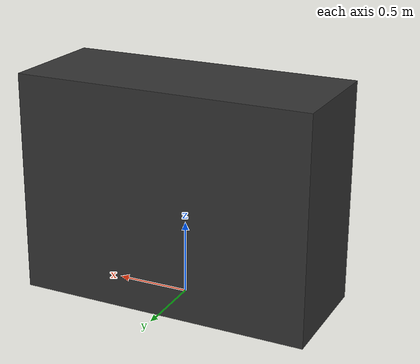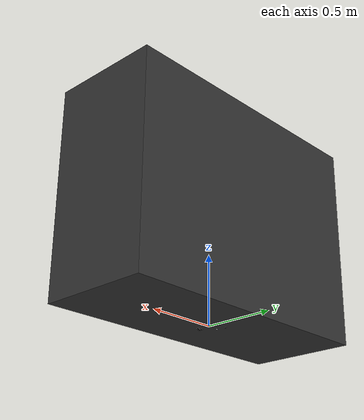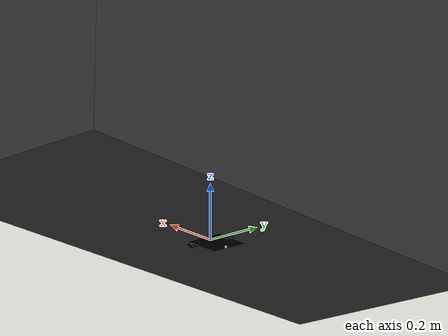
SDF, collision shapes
<?xml version="1.0" ?>
<sdf version="1.5">
  <model name="turtlebot3_burger">

    <include>
        <name>cow_tdf</name>
        <static>0</static>
        <uri>model://cow_tdf</uri>
        <pose>0 0 0 0 0 0</pose>
    </include>

    <pose>0.0 0.0 0.0 0.0 0.0 0.0</pose>

    <link name="base_footprint"/>

    <link name="base_link">

      <inertial>
        <pose>-0.032 0 0.070 0 0 0</pose>
        <inertia>
          <ixx>7.2397393e-01</ixx>
          <ixy>4.686399e-10</ixy>
          <ixz>-1.09525703e-08</ixz>
          <iyy>7.2397393e-01</iyy>
          <iyz>2.8582649e-09</iyz>
          <izz>6.53050163e-01</izz>
        </inertia>
        <mass>8.2573504e-01</mass>
      </inertial>

      <collision name="base_collision">
        <pose>-0.032 0 0.070 0 0 0</pose>
        <geometry>
          <box>
            <size>0.140 0.140 0.140</size>
          </box>
        </geometry>
      </collision>

      <visual name="base_visual">
        <pose>-0.032 0 0 0 0 0</pose>
        <geometry>
          <mesh>
            <uri>model://turtlebot3_common/meshes/burger_base.dae</uri>
            <scale>0.001 0.001 0.001</scale>
          </mesh>
        </geometry>
        <material>
          <!-- Definir o canal alfa (quarto valor) para 0 (transparente) -->
          <ambient>0 0 0 0</ambient>
          <diffuse>0 0 0 0</diffuse>
        </material>
      </visual>
    </link>

    <link name="imu_link">
      <sensor name="tb3_imu" type="imu">
        <always_on>true</always_on>
        <update_rate>200</update_rate>
        <imu>
          <angular_velocity>
            <x>
              <noise type="gaussian">
                <mean>0.0</mean>
                <stddev>2e-4</stddev>
              </noise>
            </x>
            <y>
              <noise type="gaussian">
                <mean>0.0</mean>
                <stddev>2e-4</stddev>
              </noise>
            </y>
            <z>
              <noise type="gaussian">
                <mean>0.0</mean>
                <stddev>2e-4</stddev>
              </noise>
            </z>
          </angular_velocity>
          <linear_acceleration>
            <x>
              <noise type="gaussian">
                <mean>0.0</mean>
                <stddev>1.7e-2</stddev>
              </noise>
            </x>
            <y>
              <noise type="gaussian">
                <mean>0.0</mean>
                <stddev>1.7e-2</stddev>
              </noise>
            </y>
            <z>
              <noise type="gaussian">
                <mean>0.0</mean>
                <stddev>1.7e-2</stddev>
              </noise>
            </z>
          </linear_acceleration>
        </imu>
        <plugin name="turtlebot3_imu" filename="libgazebo_ros_imu_sensor.so">
          <ros>
            <remapping>~/out:=imu</remapping>
          </ros>
        </plugin>
      </sensor>
    </link>
    <link name="wheel_left_link">

      <inertial>
        <pose>0 0.08 0.023 -1.57 0 0</pose>
        <inertia>
          <ixx>1.8158194e-03</ixx>
          <ixy>-9.3392e-12</ixy>
          <ixz>1.04909e-11</ixz>
          <iyy>3.2922126e-03</iyy>
          <iyz>5.75694e-11</iyz>
          <izz>1.8158194e-03</izz>
        </inertia>
        <mass>2.8498940e-02</mass>
      </inertial>

      <collision name="wheel_left_collision">
        <pose>0 0.08 0.023 -1.57 0 0</pose>
        <geometry>
          <cylinder>
            <radius>0.033</radius>
            <length>0.018</length>
          </cylinder>
        </geometry>
        <surface>
          <!-- This friction pamareter don't contain reliable data!! -->
          <friction>
            <ode>
              <mu>100000.0</mu>
              <mu2>100000.0</mu2>
              <fdir1>0 0 0</fdir1>
              <slip1>0.0</slip1>
              <slip2>0.0</slip2>
            </ode>
          </friction>
          <contact>
            <ode>
              <soft_cfm>0</soft_cfm>
              <soft_erp>0.2</soft_erp>
              <kp>1e+5</kp>
              <kd>1</kd>
              <max_vel>0.01</max_vel>
              <min_depth>0.001</min_depth>
            </ode>
          </contact>
        </surface>
      </collision>

      <visual name="wheel_left_visual">
        <pose>0 0.08 0.023 0 0 0</pose>
        <geometry>
          <mesh>
            <uri>model://turtlebot3_common/meshes/tire.dae</uri>
            <scale>0.001 0.001 0.001</scale>
          </mesh>
        </geometry>
        <material>
          <!-- Definir o canal alfa (quarto valor) para 0 (transparente) -->
          <ambient>0 0 0 0</ambient>
          <diffuse>0 0 0 0</diffuse>
        </material>
      </visual>
    </link>

    <link name="wheel_right_link">

      <inertial>
        <pose>0.0 -0.08 0.023 -1.57 0 0</pose>
        <inertia>
          <ixx>1.8158194e-03</ixx>
          <ixy>-9.3392e-12</ixy>
          <ixz>1.04909e-11</ixz>
          <iyy>3.2922126e-03</iyy>
          <iyz>5.75694e-11</iyz>
          <izz>1.8158194e-03</izz>
        </inertia>
        <mass>2.8498940e-02</mass>
      </inertial>

      <collision name="wheel_right_collision">
        <pose>0.0 -0.08 0.023 -1.57 0 0</pose>
        <geometry>
          <cylinder>
            <radius>0.033</radius>
            <length>0.018</length>
          </cylinder>
        </geometry>
        <surface>
          <!-- This friction pamareter don't contain reliable data!! -->
          <friction>
            <ode>
              <mu>100000.0</mu>
              <mu2>100000.0</mu2>
              <fdir1>0 0 0</fdir1>
              <slip1>0.0</slip1>
              <slip2>0.0</slip2>
            </ode>
          </friction>
          <contact>
            <ode>
              <soft_cfm>0</soft_cfm>
              <soft_erp>0.2</soft_erp>
              <kp>1e+5</kp>
              <kd>1</kd>
              <max_vel>0.01</max_vel>
              <min_depth>0.001</min_depth>
            </ode>
          </contact>
        </surface>
      </collision>

      <visual name="wheel_right_visual">
        <pose>0.0 -0.08 0.023 0 0 0</pose>
        <geometry>
          <mesh>
            <uri>model://turtlebot3_common/meshes/tire.dae</uri>
            <scale>0.001 0.001 0.001</scale>
          </mesh>
        </geometry>
        <material>
          <!-- Definir o canal alfa (quarto valor) para 0 (transparente) -->
          <ambient>0 0 0 0</ambient>
          <diffuse>0 0 0 0</diffuse>
        </material>
      </visual>
    </link>

    <link name='caster_back_link'>
      <pose>-0.081 0 -0.004 -1.57 0 0</pose>
      <inertial>
        <mass>0.005</mass>
        <inertia>
          <ixx>0.001</ixx>
          <ixy>0.000</ixy>
          <ixz>0.000</ixz>
          <iyy>0.001</iyy>
          <iyz>0.000</iyz>
          <izz>0.001</izz>
        </inertia>
      </inertial>
      <collision name='collision'>
        <geometry>
          <sphere>
            <radius>0.005000</radius>
          </sphere>
        </geometry>
        <surface>
          <contact>
            <ode>
              <soft_cfm>0</soft_cfm>
              <soft_erp>0.2</soft_erp>
              <kp>1e+5</kp>
              <kd>1</kd>
              <max_vel>0.01</max_vel>
              <min_depth>0.001</min_depth>
            </ode>
          </contact>
        </surface>
      </collision>
    </link>

    <joint name="cow_joint" type="fixed">
      <parent>base_link</parent>
      <child>cow_tdf::body</child>
      <pose>0.0 0.0 -1 0 0 0</pose>
      <axis>
        <xyz>0 0 1</xyz>
      </axis>
    </joint>

    <joint name="base_joint" type="fixed">
      <parent>base_footprint</parent>
      <child>base_link</child>
      <pose>0.0 0.0 0.010 0 0 0</pose>
    </joint>

    <joint name="wheel_left_joint" type="revolute">
      <parent>base_link</parent>
      <child>wheel_left_link</child>
      <pose>0.0 0.08 0.023 -1.57 0 0</pose>
      <axis>
        <xyz>0 0 1</xyz>
      </axis>
    </joint>

    <joint name="wheel_right_joint" type="revolute">
      <parent>base_link</parent>
      <child>wheel_right_link</child>
      <pose>0.0 -0.08 0.023 -1.57 0 0</pose>
      <axis>
        <xyz>0 0 1</xyz>
      </axis>
    </joint>

    <joint name='caster_back_joint' type='ball'>
      <parent>base_link</parent>
      <child>caster_back_link</child>
    </joint>

    <joint name="imu_joint" type="fixed">
      <parent>base_link</parent>
      <child>imu_link</child>
      <pose>-0.032 0 0.068 0 0 0</pose>
      <axis>
        <xyz>0 0 1</xyz>
      </axis>
    </joint>
    <plugin name="turtlebot3_diff_drive" filename="libgazebo_ros_diff_drive.so">

      <ros>
      </ros>

      <update_rate>30</update_rate>

      <!-- wheels -->
      <left_joint>wheel_left_joint</left_joint>
      <right_joint>wheel_right_joint</right_joint>

      <!-- kinematics -->
      <wheel_separation>0.160</wheel_separation>
      <wheel_diameter>0.066</wheel_diameter>

      <!-- limits -->
      <max_wheel_torque>20</max_wheel_torque>
      <max_wheel_acceleration>1.0</max_wheel_acceleration>

      <command_topic>cmd_vel</command_topic>

      <!-- output -->
      <publish_odom>true</publish_odom>
      <publish_odom_tf>true</publish_odom_tf>
      <publish_wheel_tf>false</publish_wheel_tf>

      <odometry_topic>odom</odometry_topic>
      <odometry_frame>odom</odometry_frame>
      <robot_base_frame>base_footprint</robot_base_frame>

    </plugin>

    <plugin name="turtlebot3_joint_state" filename="libgazebo_ros_joint_state_publisher.so">
      <ros>
        <remapping>~/out:=joint_states</remapping>
      </ros>
      <update_rate>30</update_rate>
      <joint_name>wheel_left_joint</joint_name>
      <joint_name>wheel_right_joint</joint_name>
    </plugin>
  </model>
</sdf>

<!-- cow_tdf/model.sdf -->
<sdf version="1.4">
  <model name="cow_tdf">
    <static>true</static>
    <link name="body">
     <inertial>
        <mass>1</mass>
        <inertia>
          <ixx>0.167005283</ixx>
          <ixy>0</ixy>
          <ixz>0</ixz>
          <iyy>0.167005283</iyy>
          <iyz>0</iyz>
          <izz>0.282065474</izz>
        </inertia>
      </inertial>
      <collision name="collision">
        <pose>0 0 0.75 0 0 0</pose>
        <geometry>
          <box>
            <size>2.0 0.8 1.5</size>
          </box>
        </geometry>
      </collision>
      <visual name="visual">
        <geometry>
          <mesh><uri>model://cow_tdf/meshes/cow.dae</uri></mesh>
        </geometry>
        <material>
          <ambient>0.2 0.2 0.2 1</ambient>
          <diffuse>0.2 0.2 0.2 1</diffuse>
          <specular>0.0 0.0 0.0 1</specular>
        </material>
      </visual>
    </link>
  </model>
</sdf>
